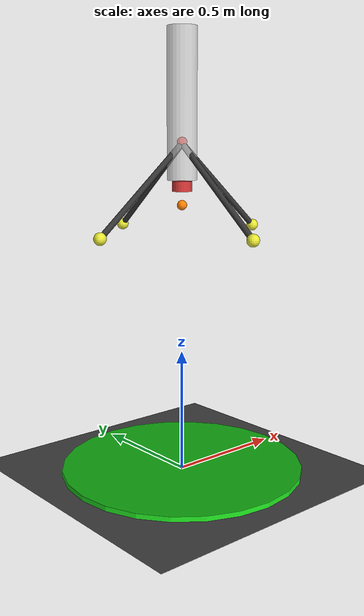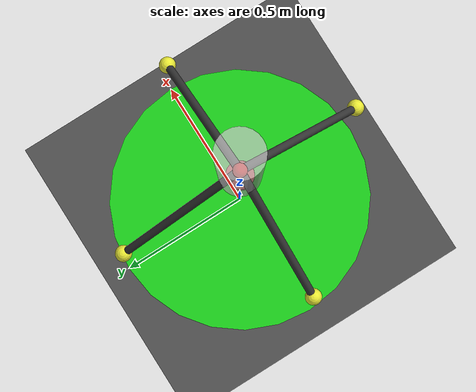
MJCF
<mujoco model="vtvl_hopper_gimbal">

    <compiler angle="degree" coordinate="local"/>

    <option gravity="0 0 -9.81"
            timestep="0.002"
            integrator="implicitfast"
            iterations="80"/>

    <visual>
        <headlight ambient="0.5 0.5 0.5"/>
    </visual>

    <asset>
        <texture type="skybox"
                 builtin="gradient"
                 rgb1="0.2 0.3 0.4"
                 rgb2="0 0 0"
                 width="512"
                 height="512"/>

        <material name="body_mat" rgba="0.7 0.7 0.7 1"/>
        <material name="leg_mat" rgba="0.2 0.2 0.2 1"/>
        <material name="pad_mat" rgba="0.1 0.8 0.1 1"/>
        <material name="foot_mat" rgba="0.9 0.9 0.2 1"/>
    </asset>

    <worldbody>

        <!-- GROUND -->

        <geom name="ground"
              type="plane"
              pos="0 0 0"
              size="20 20 0.1"
              rgba="0.3 0.3 0.3 1"
              friction="1.2 0.1 0.1"
              solref="0.02 1"
              solimp="0.9 0.95 0.001"/>

        <!-- LANDING PAD -->

        <body name="landing_pad" pos="0 0 0">

            <geom name="pad_geom"
                  type="cylinder"
                  pos="0 0 0.01"
                  size="0.5 0.01"
                  material="pad_mat"
                  contype="1"
                  conaffinity="1"
                  solref="0.02 1"
                  solimp="0.9 0.95 0.001"/>
        </body>

        <!-- HOPPER -->

        <!--
            IMPORTANT:
            Hopper body origin is placed at COM reference frame.
            Legs touch ground at Z=0.
        -->

        <body name="hopper" pos="0 0 1.355">

            <!-- Gimbal: ball joint at 0.1m below COM -->
            <joint name="gimbal" type="ball" pos="0 0 -0.1" damping="0.05"/>

            <!-- INERTIA -->

            <inertial pos="0 0 0"
                      mass="1.6"
                      diaginertia="0.025 0.025 0.008"/>

            <site name="COM"
                          pos="0 0 0.0"
                          size="0.02"
                          rgba="1 0 0 1"/>
            <!-- MAIN BODY -->

            <geom name="main_body"
                  type="cylinder"
                  fromto="0 0 -0.150  0 0 0.445"
                  size="0.06"
                  rgba="0.8 0.8 0.8 0.7"
                  material="body_mat"/>

            <!-- LANDING LEGS -->

            <!--
                Legs attach at Z=0.35
                Feet touch Z=0
                Radial span = 0.4 m
            -->

            <!-- LEG 1 -->
            <geom name="leg1"
                  type="capsule"
                  fromto="0 0 -0.005   0.4 0.0 -0.355"
                  size="0.012"
                  material="leg_mat"
                  contype="0"
                  conaffinity="0"/>

            <geom name="foot1_geom"
                  type="sphere"
                  pos="0.4 0 -0.355"
                  size="0.025"
                  material="foot_mat"
                  contype="1"
                  conaffinity="1"
                  solref="0.02 1"
                  solimp="0.9 0.95 0.001"/>

            <site name="foot1"
                  pos="0.4 0 -0.355"
                  size="0.015"
                  rgba="1 0 0 1"/>

            <!-- LEG 2 -->
            <geom name="leg2"
                  type="capsule"
                  fromto="0 0 -0.005   -0.4 0 -0.355"
                  size="0.012"
                  material="leg_mat"
                  contype="0"
                  conaffinity="0"/>

            <geom name="foot2_geom"
                  type="sphere"
                  pos="-0.4 0 -0.355"
                  size="0.025"
                  material="foot_mat"
                  contype="1"
                  conaffinity="1"
                  solref="0.02 1"
                  solimp="0.9 0.95 0.001"/>

            <site name="foot2"
                  pos="-0.4 0 -0.355"
                  size="0.015"
                  rgba="0 1 0 1"/>

            <!-- LEG 3 -->
            <geom name="leg3"
                  type="capsule"
                  fromto="0 0 -0.005   0 0.4 -0.355"
                  size="0.012"
                  material="leg_mat"
                  contype="0"
                  conaffinity="0"/>

            <geom name="foot3_geom"
                  type="sphere"
                  pos="0 0.4 -0.355"
                  size="0.025"
                  material="foot_mat"
                  contype="1"
                  conaffinity="1"
                  solref="0.02 1"
                  solimp="0.9 0.95 0.001"/>

            <site name="foot3"
                  pos="0 0.4 -0.355"
                  size="0.015"
                  rgba="0 0 1 1"/>

            <!-- LEG 4 -->
            <geom name="leg4"
                  type="capsule"
                  fromto="0 0 -0.005   0 -0.4 -0.355"
                  size="0.012"
                  material="leg_mat"
                  contype="0"
                  conaffinity="0"/>

            <geom name="foot4_geom"
                  type="sphere"
                  pos="0 -0.4 -0.355"
                  size="0.025"
                  material="foot_mat"
                  contype="1"
                  conaffinity="1"
                  solref="0.02 1"
                  solimp="0.9 0.95 0.001"/>

            <site name="foot4"
                  pos="0 -0.4 -0.355"
                  size="0.015"
                  rgba="1 1 0 1"/>

            <!-- TVC SYSTEM -->

            <!--
                TVC pivot location:
                Z = 0.255 from ground

                Relative to COM:
                0.255 - 0.355 = -0.100
            -->

            <body name="tvc_yaw" pos="0 0 -0.150">

                <inertial pos="0 0 0"
                          mass="0.01"
                        diaginertia="0.001 0.001 0.001"/>

                <!-- YAW -->
                <joint name="tvc_yaw_joint"
                      type="hinge"
                      axis="1 0 0"
                      range="-25 25"
                      damping="0.1"
                      armature="0.002"
                      frictionloss="0.005"/>

                <body name="tvc_pitch">

                    <inertial pos="0 0 0"
                              mass="0.02"
                              diaginertia="0.0002 0.0002 0.0002"/>

                    <!-- PITCH -->
                    <joint name="tvc_pitch_joint"
                        type="hinge"
                        axis="0 1 0"
                        range="-25 25"
                        damping="0.1"
                        armature="0.002"
                        frictionloss="0.005"/>

                    <!-- ENGINE -->
                    <geom name="engine"
                        type="cylinder"
                        pos="0 0 -0.025"
                        size="0.04 0.02"
                        rgba="0.8 0.2 0.2 1"
                        contype="0"
                        conaffinity="0"/>

                    <!-- THRUST APPLICATION SITE -->
                    <site name="thrust_site"
                          pos="0 0 -0.10"
                          size="0.02"
                          rgba="1 0.5 0 1"/>

                </body>
            </body>

        </body>

    </worldbody>

    <!-- ACTUATORS -->

    <actuator>
        <position joint="tvc_yaw_joint"
                  kp="10"
                  ctrlrange="-25 25"
                  forcerange="-2.5 2.5"/>

        <position joint="tvc_pitch_joint"
                  kp="10"
                  ctrlrange="-25 25"
                  forcerange="-2.5 2.5"/>
    </actuator>

</mujoco>
